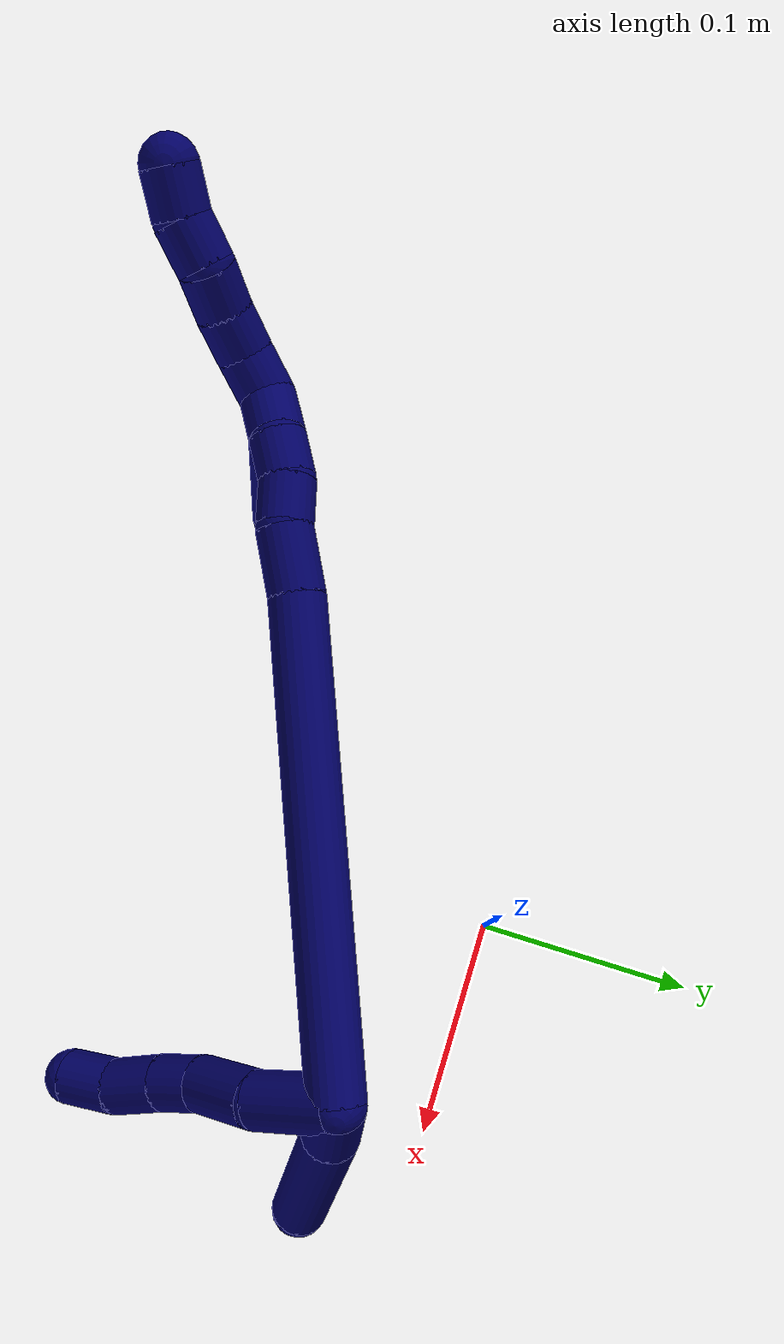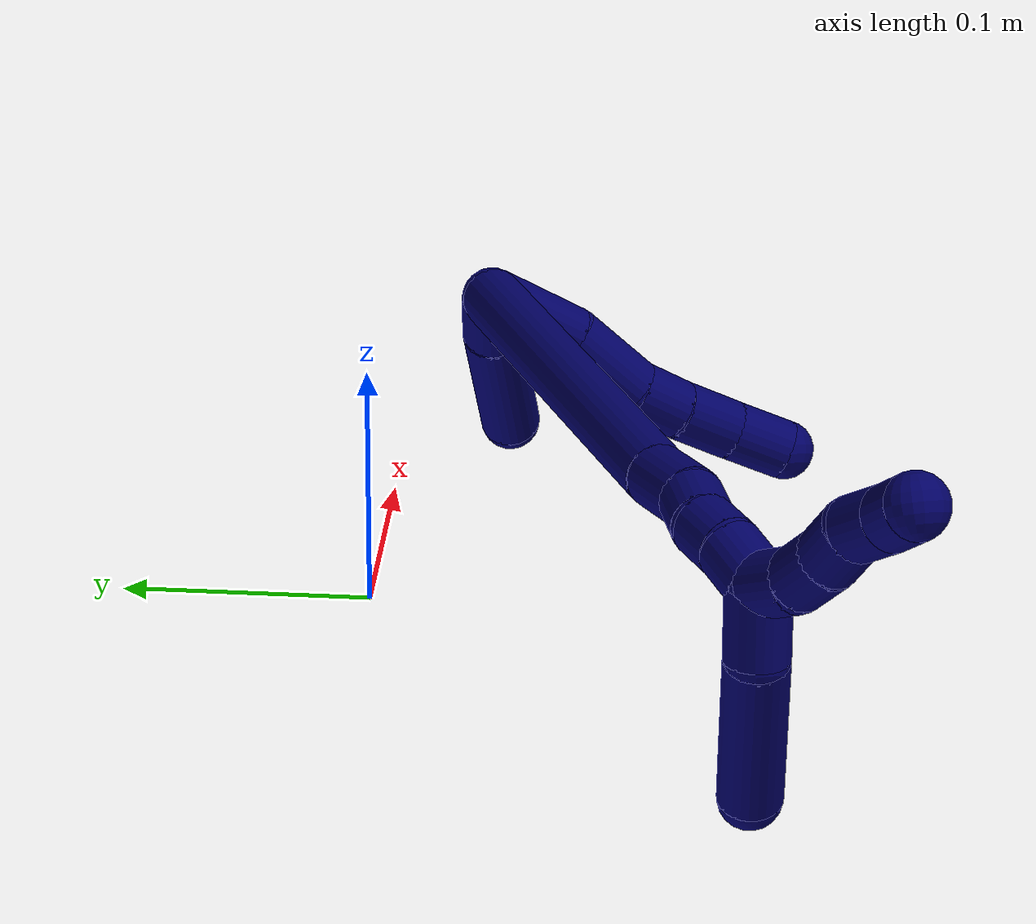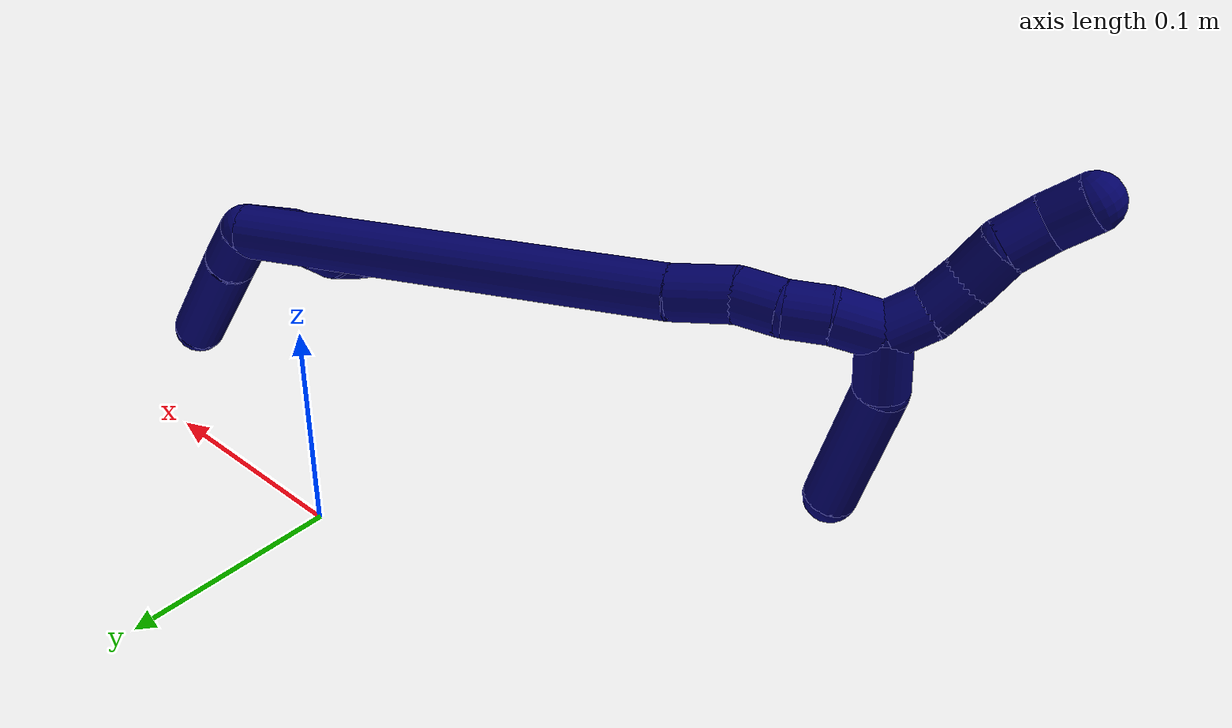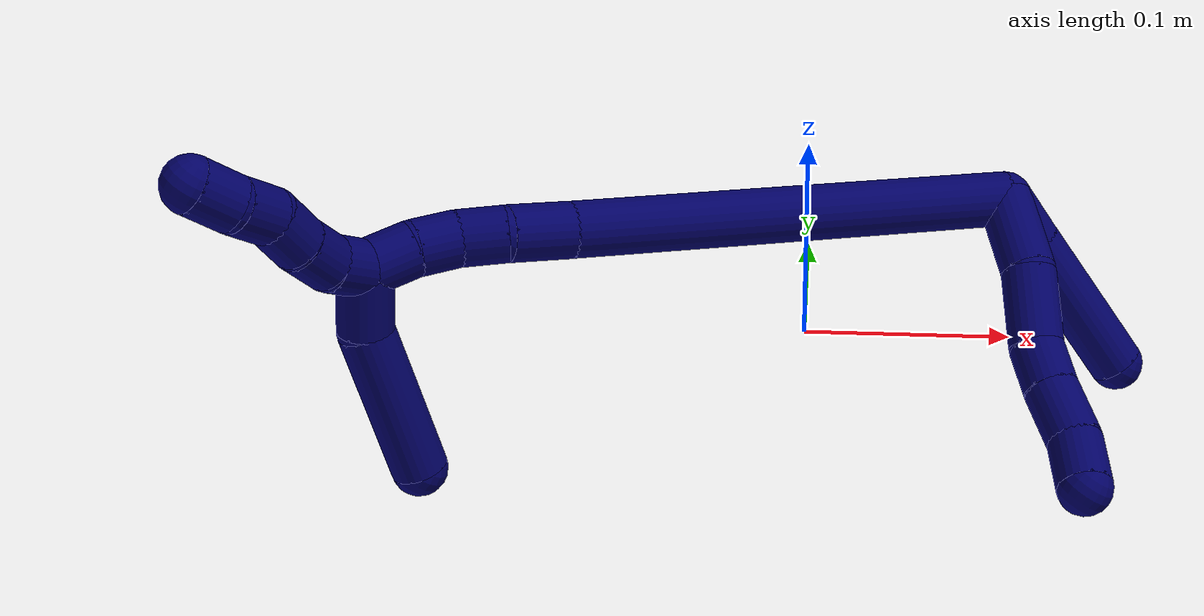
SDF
<sdf version="1.7">
 <world name="default">
  <model name="7">
   <static>0</static>
   <link name="7">
    <collision name="collision-cylinder-e_1_2_8">
     <pose>0.006621 0.016794 0.008454 -1.10444 0.338591 -0.209871</pose>
     <geometry><cylinder><radius>0.0125</radius><length>0.039866</length></cylinder></geometry>
     <surface>
      <friction><ode><mu>1.16</mu><mu2>1.16</mu2><slip1>0</slip1><slip2>0</slip2></ode></friction>
      <contact><ode><kp>1e+06</kp><kd>1</kd><max_vel>0</max_vel><min_depth>0.001</min_depth></ode></contact>
     </surface>
    </collision>
    <visual name="visual-cylinder-e_1_2_8">
     <pose>0.006621 0.016794 0.008454 -1.10444 0.338591 -0.209871</pose>
     <geometry><cylinder><radius>0.0125</radius><length>0.039866</length></cylinder></geometry>
     <material><ambient>0.003922 0 0.403922 1</ambient></material>
    </visual>
    <collision name="collision-cylinder-e_2_8_9">
     <pose>0.018896 0.046441 0.028281 -0.846408 0.318212 -0.1443</pose>
     <geometry><cylinder><radius>0.0125</radius><length>0.036141</length></cylinder></geometry>
     <surface>
      <friction><ode><mu>1.16</mu><mu2>1.16</mu2><slip1>0</slip1><slip2>0</slip2></ode></friction>
      <contact><ode><kp>1e+06</kp><kd>1</kd><max_vel>0</max_vel><min_depth>0.001</min_depth></ode></contact>
     </surface>
    </collision>
    <visual name="visual-cylinder-e_2_8_9">
     <pose>0.018896 0.046441 0.028281 -0.846408 0.318212 -0.1443</pose>
     <geometry><cylinder><radius>0.0125</radius><length>0.036141</length></cylinder></geometry>
     <material><ambient>0.003922 0 0.403922 1</ambient></material>
    </visual>
    <collision name="collision-cylinder-e_3_9_10">
     <pose>0.028327 0.068568 0.044148 -1.1196 0.351443 -0.221623</pose>
     <geometry><cylinder><radius>0.0125</radius><length>0.02195</length></cylinder></geometry>
     <surface>
      <friction><ode><mu>1.16</mu><mu2>1.16</mu2><slip1>0</slip1><slip2>0</slip2></ode></friction>
      <contact><ode><kp>1e+06</kp><kd>1</kd><max_vel>0</max_vel><min_depth>0.001</min_depth></ode></contact>
     </surface>
    </collision>
    <visual name="visual-cylinder-e_3_9_10">
     <pose>0.028327 0.068568 0.044148 -1.1196 0.351443 -0.221623</pose>
     <geometry><cylinder><radius>0.0125</radius><length>0.02195</length></cylinder></geometry>
     <material><ambient>0.003922 0 0.403922 1</ambient></material>
    </visual>
    <collision name="collision-cylinder-e_4_10_11">
     <pose>0.037384 0.089458 0.053223 -1.19516 0.399856 -0.274093</pose>
     <geometry><cylinder><radius>0.0125</radius><length>0.027115</length></cylinder></geometry>
     <surface>
      <friction><ode><mu>1.16</mu><mu2>1.16</mu2><slip1>0</slip1><slip2>0</slip2></ode></friction>
      <contact><ode><kp>1e+06</kp><kd>1</kd><max_vel>0</max_vel><min_depth>0.001</min_depth></ode></contact>
     </surface>
    </collision>
    <visual name="visual-cylinder-e_4_10_11">
     <pose>0.037384 0.089458 0.053223 -1.19516 0.399856 -0.274093</pose>
     <geometry><cylinder><radius>0.0125</radius><length>0.027115</length></cylinder></geometry>
     <material><ambient>0.003922 0 0.403922 1</ambient></material>
    </visual>
    <collision name="collision-cylinder-e_5_11_6">
     <pose>0.044452 0.112332 0.062848 -1.14956 0.144136 -0.093455</pose>
     <geometry><cylinder><radius>0.0125</radius><length>0.024927</length></cylinder></geometry>
     <surface>
      <friction><ode><mu>1.16</mu><mu2>1.16</mu2><slip1>0</slip1><slip2>0</slip2></ode></friction>
      <contact><ode><kp>1e+06</kp><kd>1</kd><max_vel>0</max_vel><min_depth>0.001</min_depth></ode></contact>
     </surface>
    </collision>
    <visual name="visual-cylinder-e_5_11_6">
     <pose>0.044452 0.112332 0.062848 -1.14956 0.144136 -0.093455</pose>
     <geometry><cylinder><radius>0.0125</radius><length>0.024927</length></cylinder></geometry>
     <material><ambient>0.003922 0 0.403922 1</ambient></material>
    </visual>
    <collision name="collision-cylinder-e_1_2_12">
     <pose>0.012016 0.001112 0.00514 -0.212983 1.15825 -0.139575</pose>
     <geometry><cylinder><radius>0.0125</radius><length>0.026233</length></cylinder></geometry>
     <surface>
      <friction><ode><mu>1.16</mu><mu2>1.16</mu2><slip1>0</slip1><slip2>0</slip2></ode></friction>
      <contact><ode><kp>1e+06</kp><kd>1</kd><max_vel>0</max_vel><min_depth>0.001</min_depth></ode></contact>
     </surface>
    </collision>
    <visual name="visual-cylinder-e_1_2_12">
     <pose>0.012016 0.001112 0.00514 -0.212983 1.15825 -0.139575</pose>
     <geometry><cylinder><radius>0.0125</radius><length>0.026233</length></cylinder></geometry>
     <material><ambient>0.003922 0 0.403922 1</ambient></material>
    </visual>
    <collision name="collision-cylinder-e_2_12_5">
     <pose>0.057477 0.009193 0.024183 -0.464674 1.13553 -0.299569</pose>
     <geometry><cylinder><radius>0.0125</radius><length>0.073767</length></cylinder></geometry>
     <surface>
      <friction><ode><mu>1.16</mu><mu2>1.16</mu2><slip1>0</slip1><slip2>0</slip2></ode></friction>
      <contact><ode><kp>1e+06</kp><kd>1</kd><max_vel>0</max_vel><min_depth>0.001</min_depth></ode></contact>
     </surface>
    </collision>
    <visual name="visual-cylinder-e_2_12_5">
     <pose>0.057477 0.009193 0.024183 -0.464674 1.13553 -0.299569</pose>
     <geometry><cylinder><radius>0.0125</radius><length>0.073767</length></cylinder></geometry>
     <material><ambient>0.003922 0 0.403922 1</ambient></material>
    </visual>
    <collision name="collision-cylinder-e_1_2_13">
     <pose>-0.089069 0.0129 0.051116 -0.247202 -1.03637 0.141429</pose>
     <geometry><cylinder><radius>0.0125</radius><length>0.207004</length></cylinder></geometry>
     <surface>
      <friction><ode><mu>1.16</mu><mu2>1.16</mu2><slip1>0</slip1><slip2>0</slip2></ode></friction>
      <contact><ode><kp>1e+06</kp><kd>1</kd><max_vel>0</max_vel><min_depth>0.001</min_depth></ode></contact>
     </surface>
    </collision>
    <visual name="visual-cylinder-e_1_2_13">
     <pose>-0.089069 0.0129 0.051116 -0.247202 -1.03637 0.141429</pose>
     <geometry><cylinder><radius>0.0125</radius><length>0.207004</length></cylinder></geometry>
     <material><ambient>0.003922 0 0.403922 1</ambient></material>
    </visual>
    <collision name="collision-cylinder-e_2_13_14">
     <pose>-0.191043 0.029098 0.10866 -0.474148 -1.06041 0.281398</pose>
     <geometry><cylinder><radius>0.0125</radius><length>0.029577</length></cylinder></geometry>
     <surface>
      <friction><ode><mu>1.16</mu><mu2>1.16</mu2><slip1>0</slip1><slip2>0</slip2></ode></friction>
      <contact><ode><kp>1e+06</kp><kd>1</kd><max_vel>0</max_vel><min_depth>0.001</min_depth></ode></contact>
     </surface>
    </collision>
    <visual name="visual-cylinder-e_2_13_14">
     <pose>-0.191043 0.029098 0.10866 -0.474148 -1.06041 0.281398</pose>
     <geometry><cylinder><radius>0.0125</radius><length>0.029577</length></cylinder></geometry>
     <material><ambient>0.003922 0 0.403922 1</ambient></material>
    </visual>
    <collision name="collision-cylinder-e_3_14_15">
     <pose>-0.212602 0.032367 0.121082 0.004993 -0.965052 -0.002616</pose>
     <geometry><cylinder><radius>0.0125</radius><length>0.021058</length></cylinder></geometry>
     <surface>
      <friction><ode><mu>1.16</mu><mu2>1.16</mu2><slip1>0</slip1><slip2>0</slip2></ode></friction>
      <contact><ode><kp>1e+06</kp><kd>1</kd><max_vel>0</max_vel><min_depth>0.001</min_depth></ode></contact>
     </surface>
    </collision>
    <visual name="visual-cylinder-e_3_14_15">
     <pose>-0.212602 0.032367 0.121082 0.004993 -0.965052 -0.002616</pose>
     <geometry><cylinder><radius>0.0125</radius><length>0.021058</length></cylinder></geometry>
     <material><ambient>0.003922 0 0.403922 1</ambient></material>
    </visual>
    <collision name="collision-cylinder-e_4_15_16">
     <pose>-0.229187 0.034981 0.132738 -0.437026 -0.90337 0.214629</pose>
     <geometry><cylinder><radius>0.0125</radius><length>0.02019</length></cylinder></geometry>
     <surface>
      <friction><ode><mu>1.16</mu><mu2>1.16</mu2><slip1>0</slip1><slip2>0</slip2></ode></friction>
      <contact><ode><kp>1e+06</kp><kd>1</kd><max_vel>0</max_vel><min_depth>0.001</min_depth></ode></contact>
     </surface>
    </collision>
    <visual name="visual-cylinder-e_4_15_16">
     <pose>-0.229187 0.034981 0.132738 -0.437026 -0.90337 0.214629</pose>
     <geometry><cylinder><radius>0.0125</radius><length>0.02019</length></cylinder></geometry>
     <material><ambient>0.003922 0 0.403922 1</ambient></material>
    </visual>
    <collision name="collision-cylinder-e_5_16_1">
     <pose>-0.244488 0.040547 0.146145 -0.360583 -0.727601 0.138576</pose>
     <geometry><cylinder><radius>0.0125</radius><length>0.022171</length></cylinder></geometry>
     <surface>
      <friction><ode><mu>1.16</mu><mu2>1.16</mu2><slip1>0</slip1><slip2>0</slip2></ode></friction>
      <contact><ode><kp>1e+06</kp><kd>1</kd><max_vel>0</max_vel><min_depth>0.001</min_depth></ode></contact>
     </surface>
    </collision>
    <visual name="visual-cylinder-e_5_16_1">
     <pose>-0.244488 0.040547 0.146145 -0.360583 -0.727601 0.138576</pose>
     <geometry><cylinder><radius>0.0125</radius><length>0.022171</length></cylinder></geometry>
     <material><ambient>0.003922 0 0.403922 1</ambient></material>
    </visual>
    <collision name="collision-cylinder-e_1_1_17">
     <pose>-0.244267 0.043045 0.166464 0.033611 0.543126 0.00936</pose>
     <geometry><cylinder><radius>0.0125</radius><length>0.029388</length></cylinder></geometry>
     <surface>
      <friction><ode><mu>1.16</mu><mu2>1.16</mu2><slip1>0</slip1><slip2>0</slip2></ode></friction>
      <contact><ode><kp>1e+06</kp><kd>1</kd><max_vel>0</max_vel><min_depth>0.001</min_depth></ode></contact>
     </surface>
    </collision>
    <visual name="visual-cylinder-e_1_1_17">
     <pose>-0.244267 0.043045 0.166464 0.033611 0.543126 0.00936</pose>
     <geometry><cylinder><radius>0.0125</radius><length>0.029388</length></cylinder></geometry>
     <material><ambient>0.003922 0 0.403922 1</ambient></material>
    </visual>
    <collision name="collision-cylinder-e_2_17_4">
     <pose>-0.209696 0.043841 0.20178 -0.053551 0.869623 -0.024877</pose>
     <geometry><cylinder><radius>0.0125</radius><length>0.070612</length></cylinder></geometry>
     <surface>
      <friction><ode><mu>1.16</mu><mu2>1.16</mu2><slip1>0</slip1><slip2>0</slip2></ode></friction>
      <contact><ode><kp>1e+06</kp><kd>1</kd><max_vel>0</max_vel><min_depth>0.001</min_depth></ode></contact>
     </surface>
    </collision>
    <visual name="visual-cylinder-e_2_17_4">
     <pose>-0.209696 0.043841 0.20178 -0.053551 0.869623 -0.024877</pose>
     <geometry><cylinder><radius>0.0125</radius><length>0.070612</length></cylinder></geometry>
     <material><ambient>0.003922 0 0.403922 1</ambient></material>
    </visual>
    <collision name="collision-cylinder-e_1_1_18">
     <pose>-0.260528 0.048412 0.154552 -1.43803 -1.04856 0.937128</pose>
     <geometry><cylinder><radius>0.0125</radius><length>0.02</length></cylinder></geometry>
     <surface>
      <friction><ode><mu>1.16</mu><mu2>1.16</mu2><slip1>0</slip1><slip2>0</slip2></ode></friction>
      <contact><ode><kp>1e+06</kp><kd>1</kd><max_vel>0</max_vel><min_depth>0.001</min_depth></ode></contact>
     </surface>
    </collision>
    <visual name="visual-cylinder-e_1_1_18">
     <pose>-0.260528 0.048412 0.154552 -1.43803 -1.04856 0.937128</pose>
     <geometry><cylinder><radius>0.0125</radius><length>0.02</length></cylinder></geometry>
     <material><ambient>0.003922 0 0.403922 1</ambient></material>
    </visual>
    <collision name="collision-cylinder-e_2_18_19">
     <pose>-0.27795 0.057539 0.152791 -2.09549 -1.06639 1.59411</pose>
     <geometry><cylinder><radius>0.0125</radius><length>0.02</length></cylinder></geometry>
     <surface>
      <friction><ode><mu>1.16</mu><mu2>1.16</mu2><slip1>0</slip1><slip2>0</slip2></ode></friction>
      <contact><ode><kp>1e+06</kp><kd>1</kd><max_vel>0</max_vel><min_depth>0.001</min_depth></ode></contact>
     </surface>
    </collision>
    <visual name="visual-cylinder-e_2_18_19">
     <pose>-0.27795 0.057539 0.152791 -2.09549 -1.06639 1.59411</pose>
     <geometry><cylinder><radius>0.0125</radius><length>0.02</length></cylinder></geometry>
     <material><ambient>0.003922 0 0.403922 1</ambient></material>
    </visual>
    <collision name="collision-cylinder-e_3_19_20">
     <pose>-0.295529 0.064833 0.146842 -2.41901 -1.08106 2.01774</pose>
     <geometry><cylinder><radius>0.0125</radius><length>0.02</length></cylinder></geometry>
     <surface>
      <friction><ode><mu>1.16</mu><mu2>1.16</mu2><slip1>0</slip1><slip2>0</slip2></ode></friction>
      <contact><ode><kp>1e+06</kp><kd>1</kd><max_vel>0</max_vel><min_depth>0.001</min_depth></ode></contact>
     </surface>
    </collision>
    <visual name="visual-cylinder-e_3_19_20">
     <pose>-0.295529 0.064833 0.146842 -2.41901 -1.08106 2.01774</pose>
     <geometry><cylinder><radius>0.0125</radius><length>0.02</length></cylinder></geometry>
     <material><ambient>0.003922 0 0.403922 1</ambient></material>
    </visual>
    <collision name="collision-cylinder-e_4_20_21">
     <pose>-0.313202 0.072581 0.142859 -1.66852 -1.0861 1.17459</pose>
     <geometry><cylinder><radius>0.0125</radius><length>0.02</length></cylinder></geometry>
     <surface>
      <friction><ode><mu>1.16</mu><mu2>1.16</mu2><slip1>0</slip1><slip2>0</slip2></ode></friction>
      <contact><ode><kp>1e+06</kp><kd>1</kd><max_vel>0</max_vel><min_depth>0.001</min_depth></ode></contact>
     </surface>
    </collision>
    <visual name="visual-cylinder-e_4_20_21">
     <pose>-0.313202 0.072581 0.142859 -1.66852 -1.0861 1.17459</pose>
     <geometry><cylinder><radius>0.0125</radius><length>0.02</length></cylinder></geometry>
     <material><ambient>0.003922 0 0.403922 1</ambient></material>
    </visual>
    <collision name="collision-cylinder-e_5_21_3">
     <pose>-0.331788 0.079454 0.141986 -1.75578 -1.34128 1.5253</pose>
     <geometry><cylinder><radius>0.0125</radius><length>0.02</length></cylinder></geometry>
     <surface>
      <friction><ode><mu>1.16</mu><mu2>1.16</mu2><slip1>0</slip1><slip2>0</slip2></ode></friction>
      <contact><ode><kp>1e+06</kp><kd>1</kd><max_vel>0</max_vel><min_depth>0.001</min_depth></ode></contact>
     </surface>
    </collision>
    <visual name="visual-cylinder-e_5_21_3">
     <pose>-0.331788 0.079454 0.141986 -1.75578 -1.34128 1.5253</pose>
     <geometry><cylinder><radius>0.0125</radius><length>0.02</length></cylinder></geometry>
     <material><ambient>0.003922 0 0.403922 1</ambient></material>
    </visual>
    <collision name="collision-sphere-3">
     <pose>-0.341525 0.08169 0.141567 0 -0 0</pose>
     <geometry><sphere><radius>0.0125</radius></sphere></geometry>
     <surface>
      <friction><ode><mu>1.16</mu><mu2>1.16</mu2><slip1>0</slip1><slip2>0</slip2></ode></friction>
      <contact><ode><kp>1e+06</kp><kd>1</kd><max_vel>0</max_vel><min_depth>0.001</min_depth></ode></contact>
     </surface>
    </collision>
    <visual name="visual-sphere-3">
     <pose>-0.341525 0.08169 0.141567 0 -0 0</pose>
     <geometry><sphere><radius>0.0125</radius></sphere></geometry>
     <material><ambient>0.003922 0 0.403922 1</ambient></material>
    </visual>
    <collision name="collision-sphere-21">
     <pose>-0.32205 0.077218 0.142404 0 -0 0</pose>
     <geometry><sphere><radius>0.0125</radius></sphere></geometry>
     <surface>
      <friction><ode><mu>1.16</mu><mu2>1.16</mu2><slip1>0</slip1><slip2>0</slip2></ode></friction>
      <contact><ode><kp>1e+06</kp><kd>1</kd><max_vel>0</max_vel><min_depth>0.001</min_depth></ode></contact>
     </surface>
    </collision>
    <visual name="visual-sphere-21">
     <pose>-0.32205 0.077218 0.142404 0 -0 0</pose>
     <geometry><sphere><radius>0.0125</radius></sphere></geometry>
     <material><ambient>0.003922 0 0.403922 1</ambient></material>
    </visual>
    <collision name="collision-sphere-20">
     <pose>-0.304354 0.067944 0.143313 0 -0 0</pose>
     <geometry><sphere><radius>0.0125</radius></sphere></geometry>
     <surface>
      <friction><ode><mu>1.16</mu><mu2>1.16</mu2><slip1>0</slip1><slip2>0</slip2></ode></friction>
      <contact><ode><kp>1e+06</kp><kd>1</kd><max_vel>0</max_vel><min_depth>0.001</min_depth></ode></contact>
     </surface>
    </collision>
    <visual name="visual-sphere-20">
     <pose>-0.304354 0.067944 0.143313 0 -0 0</pose>
     <geometry><sphere><radius>0.0125</radius></sphere></geometry>
     <material><ambient>0.003922 0 0.403922 1</ambient></material>
    </visual>
    <collision name="collision-sphere-19">
     <pose>-0.286704 0.061722 0.15037 0 -0 0</pose>
     <geometry><sphere><radius>0.0125</radius></sphere></geometry>
     <surface>
      <friction><ode><mu>1.16</mu><mu2>1.16</mu2><slip1>0</slip1><slip2>0</slip2></ode></friction>
      <contact><ode><kp>1e+06</kp><kd>1</kd><max_vel>0</max_vel><min_depth>0.001</min_depth></ode></contact>
     </surface>
    </collision>
    <visual name="visual-sphere-19">
     <pose>-0.286704 0.061722 0.15037 0 -0 0</pose>
     <geometry><sphere><radius>0.0125</radius></sphere></geometry>
     <material><ambient>0.003922 0 0.403922 1</ambient></material>
    </visual>
    <collision name="collision-sphere-6">
     <pose>0.046242 0.123588 0.067891 0 -0 0</pose>
     <geometry><sphere><radius>0.0125</radius></sphere></geometry>
     <surface>
      <friction><ode><mu>1.16</mu><mu2>1.16</mu2><slip1>0</slip1><slip2>0</slip2></ode></friction>
      <contact><ode><kp>1e+06</kp><kd>1</kd><max_vel>0</max_vel><min_depth>0.001</min_depth></ode></contact>
     </surface>
    </collision>
    <visual name="visual-sphere-6">
     <pose>0.046242 0.123588 0.067891 0 -0 0</pose>
     <geometry><sphere><radius>0.0125</radius></sphere></geometry>
     <material><ambient>0.003922 0 0.403922 1</ambient></material>
    </visual>
    <collision name="collision-sphere-11">
     <pose>0.042661 0.101076 0.057804 0 -0 0</pose>
     <geometry><sphere><radius>0.0125</radius></sphere></geometry>
     <surface>
      <friction><ode><mu>1.16</mu><mu2>1.16</mu2><slip1>0</slip1><slip2>0</slip2></ode></friction>
      <contact><ode><kp>1e+06</kp><kd>1</kd><max_vel>0</max_vel><min_depth>0.001</min_depth></ode></contact>
     </surface>
    </collision>
    <visual name="visual-sphere-11">
     <pose>0.042661 0.101076 0.057804 0 -0 0</pose>
     <geometry><sphere><radius>0.0125</radius></sphere></geometry>
     <material><ambient>0.003922 0 0.403922 1</ambient></material>
    </visual>
    <collision name="collision-sphere-10">
     <pose>0.032106 0.077841 0.048641 0 -0 0</pose>
     <geometry><sphere><radius>0.0125</radius></sphere></geometry>
     <surface>
      <friction><ode><mu>1.16</mu><mu2>1.16</mu2><slip1>0</slip1><slip2>0</slip2></ode></friction>
      <contact><ode><kp>1e+06</kp><kd>1</kd><max_vel>0</max_vel><min_depth>0.001</min_depth></ode></contact>
     </surface>
    </collision>
    <visual name="visual-sphere-10">
     <pose>0.032106 0.077841 0.048641 0 -0 0</pose>
     <geometry><sphere><radius>0.0125</radius></sphere></geometry>
     <material><ambient>0.003922 0 0.403922 1</ambient></material>
    </visual>
    <collision name="collision-sphere-9">
     <pose>0.024549 0.059295 0.039655 0 -0 0</pose>
     <geometry><sphere><radius>0.0125</radius></sphere></geometry>
     <surface>
      <friction><ode><mu>1.16</mu><mu2>1.16</mu2><slip1>0</slip1><slip2>0</slip2></ode></friction>
      <contact><ode><kp>1e+06</kp><kd>1</kd><max_vel>0</max_vel><min_depth>0.001</min_depth></ode></contact>
     </surface>
    </collision>
    <visual name="visual-sphere-9">
     <pose>0.024549 0.059295 0.039655 0 -0 0</pose>
     <geometry><sphere><radius>0.0125</radius></sphere></geometry>
     <material><ambient>0.003922 0 0.403922 1</ambient></material>
    </visual>
    <collision name="collision-sphere-2">
     <geometry><sphere><radius>0.0125</radius></sphere></geometry>
     <surface>
      <friction><ode><mu>1.16</mu><mu2>1.16</mu2><slip1>0</slip1><slip2>0</slip2></ode></friction>
      <contact><ode><kp>1e+06</kp><kd>1</kd><max_vel>0</max_vel><min_depth>0.001</min_depth></ode></contact>
     </surface>
    </collision>
    <visual name="visual-sphere-2">
     <geometry><sphere><radius>0.0125</radius></sphere></geometry>
     <material><ambient>0.003922 0 0.403922 1</ambient></material>
    </visual>
    <collision name="collision-sphere-8">
     <pose>0.013242 0.033587 0.016907 0 -0 0</pose>
     <geometry><sphere><radius>0.0125</radius></sphere></geometry>
     <surface>
      <friction><ode><mu>1.16</mu><mu2>1.16</mu2><slip1>0</slip1><slip2>0</slip2></ode></friction>
      <contact><ode><kp>1e+06</kp><kd>1</kd><max_vel>0</max_vel><min_depth>0.001</min_depth></ode></contact>
     </surface>
    </collision>
    <visual name="visual-sphere-8">
     <pose>0.013242 0.033587 0.016907 0 -0 0</pose>
     <geometry><sphere><radius>0.0125</radius></sphere></geometry>
     <material><ambient>0.003922 0 0.403922 1</ambient></material>
    </visual>
    <collision name="collision-sphere-12">
     <pose>0.024032 0.002223 0.01028 0 -0 0</pose>
     <geometry><sphere><radius>0.0125</radius></sphere></geometry>
     <surface>
      <friction><ode><mu>1.16</mu><mu2>1.16</mu2><slip1>0</slip1><slip2>0</slip2></ode></friction>
      <contact><ode><kp>1e+06</kp><kd>1</kd><max_vel>0</max_vel><min_depth>0.001</min_depth></ode></contact>
     </surface>
    </collision>
    <visual name="visual-sphere-12">
     <pose>0.024032 0.002223 0.01028 0 -0 0</pose>
     <geometry><sphere><radius>0.0125</radius></sphere></geometry>
     <material><ambient>0.003922 0 0.403922 1</ambient></material>
    </visual>
    <collision name="collision-sphere-5">
     <pose>0.090921 0.016162 0.038086 0 -0 0</pose>
     <geometry><sphere><radius>0.0125</radius></sphere></geometry>
     <surface>
      <friction><ode><mu>1.16</mu><mu2>1.16</mu2><slip1>0</slip1><slip2>0</slip2></ode></friction>
      <contact><ode><kp>1e+06</kp><kd>1</kd><max_vel>0</max_vel><min_depth>0.001</min_depth></ode></contact>
     </surface>
    </collision>
    <visual name="visual-sphere-5">
     <pose>0.090921 0.016162 0.038086 0 -0 0</pose>
     <geometry><sphere><radius>0.0125</radius></sphere></geometry>
     <material><ambient>0.003922 0 0.403922 1</ambient></material>
    </visual>
    <collision name="collision-sphere-13">
     <pose>-0.178139 0.0258 0.102232 0 -0 0</pose>
     <geometry><sphere><radius>0.0125</radius></sphere></geometry>
     <surface>
      <friction><ode><mu>1.16</mu><mu2>1.16</mu2><slip1>0</slip1><slip2>0</slip2></ode></friction>
      <contact><ode><kp>1e+06</kp><kd>1</kd><max_vel>0</max_vel><min_depth>0.001</min_depth></ode></contact>
     </surface>
    </collision>
    <visual name="visual-sphere-13">
     <pose>-0.178139 0.0258 0.102232 0 -0 0</pose>
     <geometry><sphere><radius>0.0125</radius></sphere></geometry>
     <material><ambient>0.003922 0 0.403922 1</ambient></material>
    </visual>
    <collision name="collision-sphere-14">
     <pose>-0.203946 0.032397 0.115087 0 -0 0</pose>
     <geometry><sphere><radius>0.0125</radius></sphere></geometry>
     <surface>
      <friction><ode><mu>1.16</mu><mu2>1.16</mu2><slip1>0</slip1><slip2>0</slip2></ode></friction>
      <contact><ode><kp>1e+06</kp><kd>1</kd><max_vel>0</max_vel><min_depth>0.001</min_depth></ode></contact>
     </surface>
    </collision>
    <visual name="visual-sphere-14">
     <pose>-0.203946 0.032397 0.115087 0 -0 0</pose>
     <geometry><sphere><radius>0.0125</radius></sphere></geometry>
     <material><ambient>0.003922 0 0.403922 1</ambient></material>
    </visual>
    <collision name="collision-sphere-15">
     <pose>-0.221258 0.032337 0.127077 0 -0 0</pose>
     <geometry><sphere><radius>0.0125</radius></sphere></geometry>
     <surface>
      <friction><ode><mu>1.16</mu><mu2>1.16</mu2><slip1>0</slip1><slip2>0</slip2></ode></friction>
      <contact><ode><kp>1e+06</kp><kd>1</kd><max_vel>0</max_vel><min_depth>0.001</min_depth></ode></contact>
     </surface>
    </collision>
    <visual name="visual-sphere-15">
     <pose>-0.221258 0.032337 0.127077 0 -0 0</pose>
     <geometry><sphere><radius>0.0125</radius></sphere></geometry>
     <material><ambient>0.003922 0 0.403922 1</ambient></material>
    </visual>
    <collision name="collision-sphere-16">
     <pose>-0.237115 0.037626 0.138399 0 -0 0</pose>
     <geometry><sphere><radius>0.0125</radius></sphere></geometry>
     <surface>
      <friction><ode><mu>1.16</mu><mu2>1.16</mu2><slip1>0</slip1><slip2>0</slip2></ode></friction>
      <contact><ode><kp>1e+06</kp><kd>1</kd><max_vel>0</max_vel><min_depth>0.001</min_depth></ode></contact>
     </surface>
    </collision>
    <visual name="visual-sphere-16">
     <pose>-0.237115 0.037626 0.138399 0 -0 0</pose>
     <geometry><sphere><radius>0.0125</radius></sphere></geometry>
     <material><ambient>0.003922 0 0.403922 1</ambient></material>
    </visual>
    <collision name="collision-sphere-1">
     <pose>-0.251861 0.043468 0.153891 0 -0 0</pose>
     <geometry><sphere><radius>0.0125</radius></sphere></geometry>
     <surface>
      <friction><ode><mu>1.16</mu><mu2>1.16</mu2><slip1>0</slip1><slip2>0</slip2></ode></friction>
      <contact><ode><kp>1e+06</kp><kd>1</kd><max_vel>0</max_vel><min_depth>0.001</min_depth></ode></contact>
     </surface>
    </collision>
    <visual name="visual-sphere-1">
     <pose>-0.251861 0.043468 0.153891 0 -0 0</pose>
     <geometry><sphere><radius>0.0125</radius></sphere></geometry>
     <material><ambient>0.003922 0 0.403922 1</ambient></material>
    </visual>
    <collision name="collision-sphere-18">
     <pose>-0.269195 0.053356 0.155212 0 -0 0</pose>
     <geometry><sphere><radius>0.0125</radius></sphere></geometry>
     <surface>
      <friction><ode><mu>1.16</mu><mu2>1.16</mu2><slip1>0</slip1><slip2>0</slip2></ode></friction>
      <contact><ode><kp>1e+06</kp><kd>1</kd><max_vel>0</max_vel><min_depth>0.001</min_depth></ode></contact>
     </surface>
    </collision>
    <visual name="visual-sphere-18">
     <pose>-0.269195 0.053356 0.155212 0 -0 0</pose>
     <geometry><sphere><radius>0.0125</radius></sphere></geometry>
     <material><ambient>0.003922 0 0.403922 1</ambient></material>
    </visual>
    <collision name="collision-sphere-17">
     <pose>-0.236673 0.042622 0.179036 0 -0 0</pose>
     <geometry><sphere><radius>0.0125</radius></sphere></geometry>
     <surface>
      <friction><ode><mu>1.16</mu><mu2>1.16</mu2><slip1>0</slip1><slip2>0</slip2></ode></friction>
      <contact><ode><kp>1e+06</kp><kd>1</kd><max_vel>0</max_vel><min_depth>0.001</min_depth></ode></contact>
     </surface>
    </collision>
    <visual name="visual-sphere-17">
     <pose>-0.236673 0.042622 0.179036 0 -0 0</pose>
     <geometry><sphere><radius>0.0125</radius></sphere></geometry>
     <material><ambient>0.003922 0 0.403922 1</ambient></material>
    </visual>
    <collision name="collision-sphere-4">
     <pose>-0.182719 0.045061 0.224524 0 -0 0</pose>
     <geometry><sphere><radius>0.0125</radius></sphere></geometry>
     <surface>
      <friction><ode><mu>1.16</mu><mu2>1.16</mu2><slip1>0</slip1><slip2>0</slip2></ode></friction>
      <contact><ode><kp>1e+06</kp><kd>1</kd><max_vel>0</max_vel><min_depth>0.001</min_depth></ode></contact>
     </surface>
    </collision>
    <visual name="visual-sphere-4">
     <pose>-0.182719 0.045061 0.224524 0 -0 0</pose>
     <geometry><sphere><radius>0.0125</radius></sphere></geometry>
     <material><ambient>0.003922 0 0.403922 1</ambient></material>
    </visual>
    <inertial>
     <pose>-0.109244 0.035228 0.08459 0 -0 0</pose>
     <mass>0.75</mass>
     <inertia>
      <ixx>0.000477</ixx>
      <ixy>0</ixy>
      <ixz>0</ixz>
      <iyy>0.000903</iyy>
      <iyz>0</iyz>
      <izz>0.000493</izz>
     </inertia>
    </inertial>
   </link>
   <pose>0.090526 -0.041632 0.093758 3.11896 0.596345 0.249977</pose>
  </model>
 </world>
</sdf>
